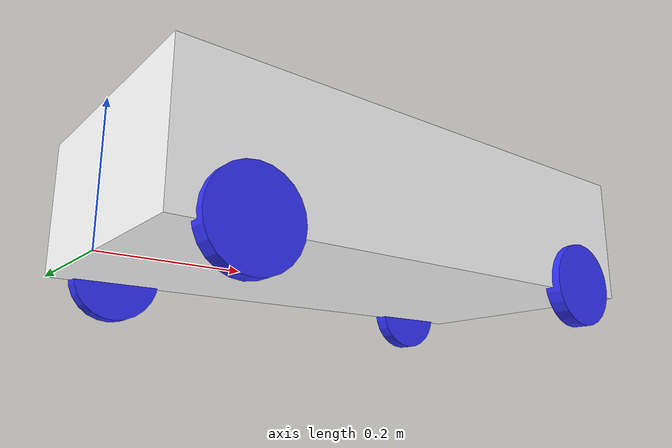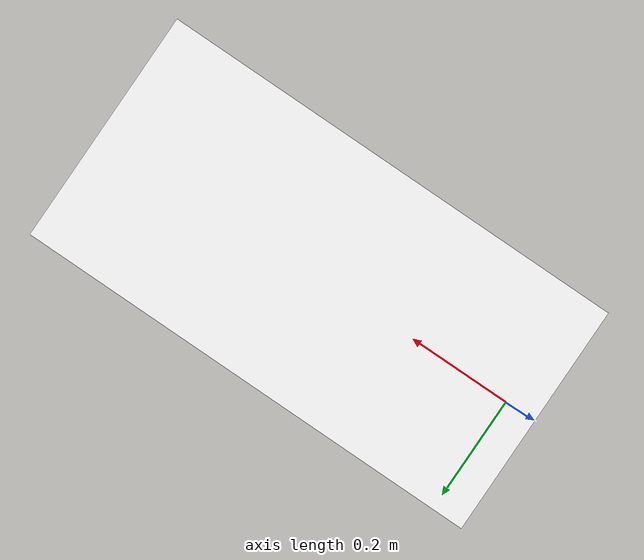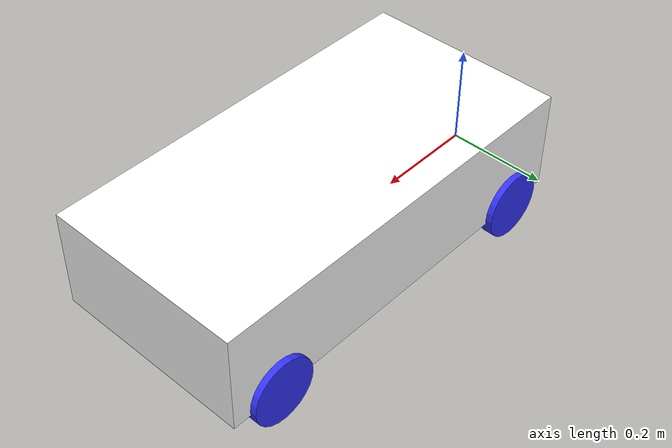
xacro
<?xml version="1.0"?>
<robot xmlns:xacro="http://www.ros.org/wiki/xacro">

    <material name="white">
        <color rgba="1 1 1 1" />
    </material>
    <material name="orange">
        <color rgba="1 0.3 0.1 1" />
    </material>
    <material name="blue">
        <color rgba="0.2 0.2 1 1" />
    </material>
    <material name="black">
        <color rgba="0 0 0 1" />
    </material>

<!-- Base link -->

    <link name="base_link">
    </link>

<!-- Chassis link -->

    <joint name="chassis_joint" type="fixed">
        <parent link="base_link"/>
        <child link="chassis"/>
        <origin xyz="0 0 0"/>
    </joint>

    <link name="chassis">
        <visual>
            <origin xyz="0.4 0 0.1"/>
            <geometry>
                <box size="0.8 0.4 0.2"/>
            </geometry>
            <material name="white"/>
        </visual>
        <collision>
            <origin xyz="0.4 0 0.1"/>
            <geometry>
                <box size="0.8 0.4 0.2"/>
            </geometry>
        </collision>
        <xacro:inertial_box mass="0.5" x="0.8" y="0.4" z="0.2">
            <origin xyz="0.4 0 0.1" rpy="0 0 0"/>
        </xacro:inertial_box>
    </link>

    <!--  Left Front Wheel  -->
    <joint name="left_front_wheel" type="continuous">
        <parent link="base_link"/>
        <child link="left_front_wheel"/>
        <origin xyz="0.7 0.2 0.01" rpy="-${pi/2} 0 0"/>
        <axis xyz="0 0 1"/>
    </joint>
    <link name="left_front_wheel">
        <visual>
            <geometry>
                <cylinder radius="0.065" length="0.025"/>
            </geometry>
            <material name="blue"/>
        </visual>
        <collision>
            <geometry>
                <cylinder radius="0.065" length="0.025"/>
            </geometry>
        </collision>
        <xacro:inertial_cylinder mass="0.1" length="0.025" radius="0.065"/>
            <origin xyz="0 0 0" rpy="0 0 0"/>
        <xacro:inertial_cylinder/>
    </link>

      <!--  Right Front Wheel  -->
    <joint name="right_front_wheel" type="continuous">
        <parent link="base_link"/>
        <child link="right_front_wheel"/>
        <origin xyz="0.7 -0.2 0.01" rpy="${pi/2} 0 0"/>
        <axis xyz="0 0 -1"/>
    </joint>
    <link name="right_front_wheel">
        <visual>
            <geometry>
                <cylinder radius="0.065" length="0.025"/>
            </geometry>
            <material name="blue"/>
        </visual>
        <collision>
            <geometry>
                <cylinder radius="0.065" length="0.025"/>
            </geometry>
        </collision>
        <xacro:inertial_cylinder mass="0.1" length="0.025" radius="0.065"/>
            <origin xyz="0 0 0" rpy="0 0 0"/>
        <xacro:inertial_cylinder/>
    </link>

    <!--  Left Rear Wheel  -->
    <joint name="left_rear_wheel" type="continuous">
        <parent link="base_link"/>
        <child link="left_rear_wheel"/>
        <origin xyz="0.1 0.2 0.01" rpy="-${pi/2} 0 0"/>
        <axis xyz="0 0 1"/>
    </joint>
    <link name="left_rear_wheel">
        <visual>
            <geometry>
                <cylinder radius="0.065" length="0.025"/>
            </geometry>
            <material name="blue"/>
        </visual>
        <collision>
            <geometry>
                <cylinder radius="0.065" length="0.025"/>
            </geometry>
        </collision>
        <xacro:inertial_cylinder mass="0.1" length="0.025" radius="0.065"/>
            <origin xyz="0 0 0" rpy="0 0 0"/>
        <xacro:inertial_cylinder/>
    </link>

      <!--  Right Rear Wheel  -->
    <joint name="right_rear_wheel" type="continuous">
        <parent link="base_link"/>
        <child link="right_rear_wheel"/>
        <origin xyz="0.1 -0.2 0.01" rpy="${pi/2} 0 0"/>
        <axis xyz="0 0 -1"/>
    </joint>
    <link name="right_rear_wheel">
        <visual>
            <geometry>
                <cylinder radius="0.065" length="0.025"/>
            </geometry>
            <material name="blue"/>
        </visual>
        <collision>
            <geometry>
                <cylinder radius="0.065" length="0.025"/>
            </geometry>
        </collision>
        <xacro:inertial_cylinder mass="0.1" length="0.025" radius="0.065"/>
            <origin xyz="0 0 0" rpy="0 0 0"/>
        <xacro:inertial_cylinder/>
    </link>

</robot>
